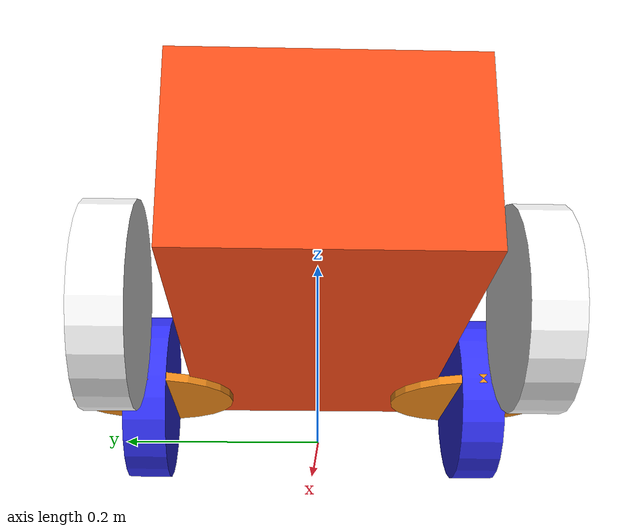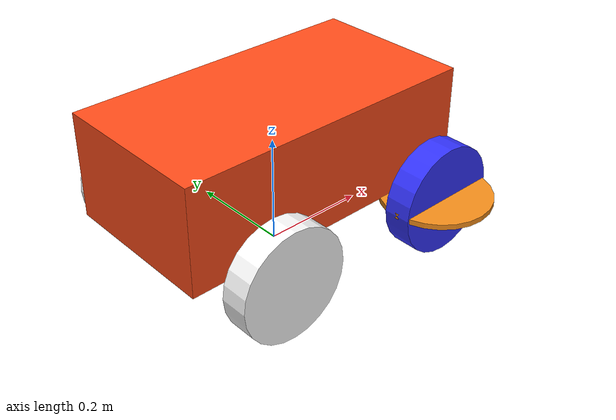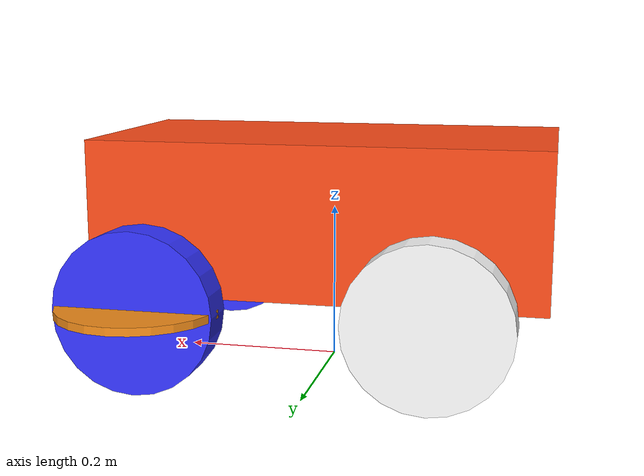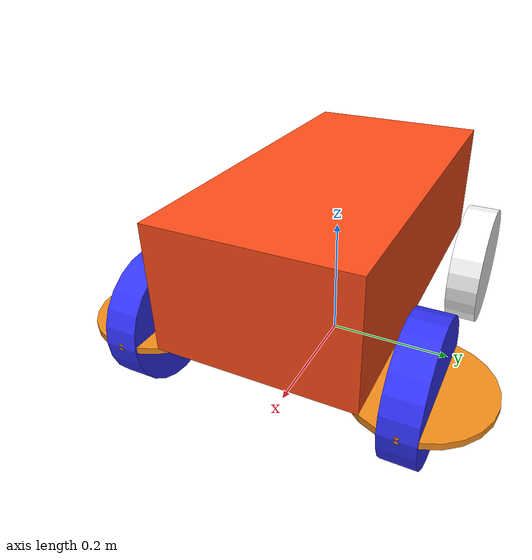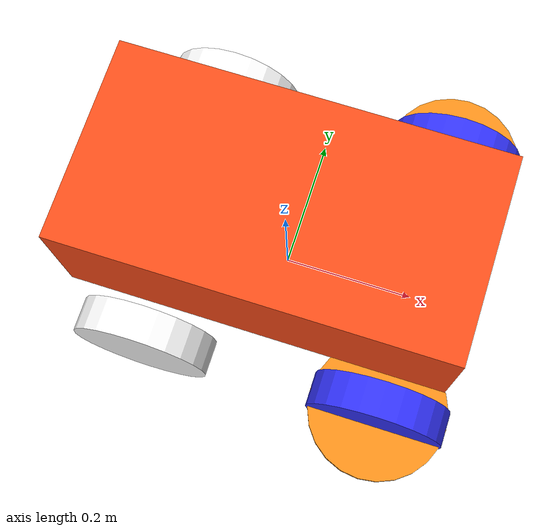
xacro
<?xml version="1.0"?>
<robot name="traxxas" xmlns:xacro="http://www.ros.org/wiki/xacro">
    <xacro:include filename="inertial_macros.xacro" />
    <xacro:include filename="../colors.xacro" />
    <xacro:include filename="gazebo_control.xacro" />
    <!-- Base link -->
    <link name="base_link">
    </link>

    <!-- Chassis START-->
    <joint name="chassis_joint" type="fixed">
        <parent link="base_link" />
        <child link="chassis" />
        <origin xyz="0 0 0.1" />
    </joint>

    <link name="chassis">
        <visual>
            <origin xyz="0 0 0.1" rpy="0 0 0" />
            <geometry>
                <box size="0.568 0.296 0.193" />
            </geometry>
            <material name="orange" />
        </visual>
        <collision>
            <origin xyz="0 0 0.1" rpy="0 0 0" />
            <geometry>
                <box size="0.568 0.296 0.193" />
            </geometry>
        </collision>
        <xacro:inertial_box mass="0.5" x="0.568" y="0.296" z="0.193">
            <origin xyz="0 0 0.1" rpy="0 0 0" />
        </xacro:inertial_box>
    </link>

    <gazebo reference="chassis">
        <material>Gazebo/Orange</material>
    </gazebo>

    <joint name="rear_right_wheel_joint" type="continuous">
        <parent link="chassis" />
        <child link="rear_right_wheel" />
        <origin xyz="-0.15 0.200 0" rpy="-${pi/2} 0 0" />
        <dynamics damping="0.1"/>
        <limit effort="10" velocity="10" />
        <joint_properties damping="0.0" friction="0.0" />
        <axis xyz="0 0 1" />
    </joint>

    <link name="rear_right_wheel">
        <visual>
            <origin xyz="0 0 0" rpy="0 0 0" />
            <geometry>
                <cylinder length="0.05" radius="0.1" />
            </geometry>
            <material name="white" />
        </visual>
        <collision>
            <geometry>
                <cylinder length="0.05" radius="0.1" />
            </geometry>
        </collision>
        <xacro:inertial_cylinder mass="0.1" length="0.05" radius="0.1">
            <origin xyz="0 0 0" rpy="0 0 0" />
        </xacro:inertial_cylinder>
    </link>

    <gazebo reference="rear_right_wheel">
        <material>Gazebo/Blue</material>
    </gazebo>

    <joint name="rear_left_wheel_joint" type="continuous">
        <parent link="chassis" />
        <child link="rear_left_wheel" />
        <origin xyz="-0.15 -0.200 0" rpy="-${pi/2} 0 0" />
        <dynamics damping="0.1"/>
        <limit effort="10" velocity="10" />
        <joint_properties damping="0.0" friction="0.0" />
        <axis xyz="0 0 1" />
    </joint>

    <link name="rear_left_wheel">
        <visual>
            <origin xyz="0 0 0" rpy="0 0 0" />
            <geometry>
                <cylinder length="0.05" radius="0.1" />
            </geometry>
            <material name="white" />
        </visual>
        <collision>
            <geometry>
                <cylinder length="0.1" radius="0.1" />
            </geometry>
        </collision>
        <xacro:inertial_cylinder mass="0.05" length="0.05" radius="0.1">
            <origin xyz="0 0 0" rpy="0 0 0" />
        </xacro:inertial_cylinder>
    </link>

    <gazebo reference="rear_left_wheel">
        <material>Gazebo/Blue</material>
    </gazebo>

    <!-- FRONT RIGHT WHEEL -->
    <link name="front_right_wheel">
        <visual>
            <geometry>
                <cylinder length="0.05" radius="0.1" />
            </geometry>
            <material name="blue" />
        </visual>
        <collision>
            <geometry>
                <cylinder length="0.05" radius="0.1" />
            </geometry>
        </collision>
        <xacro:inertial_cylinder mass="0.1" length="0.05" radius="0.1">
            <origin xyz="0 0 0" rpy="0 0 0" />
        </xacro:inertial_cylinder>
    </link>

    <link name="front_right_steering_link">
        <visual>
            <geometry>
                <cylinder length="0.01" radius="0.1" />
            </geometry>
        </visual>
        <collision>
            <geometry>
                <cylinder length="0.01" radius="0.1" />
            </geometry>
        </collision>
        <xacro:inertial_cylinder mass="0.1" length="0.01" radius="0.1">
            <origin xyz="0 0 0" rpy="0 0 0" />
        </xacro:inertial_cylinder>
    </link>

    <joint name="front_right_wheel_joint" type="continuous">
        <parent link="front_right_steering_link" />
        <child link="front_right_wheel" />
        <origin xyz="0 0 0" rpy="-${pi/2} 0 0" />
        <axis xyz="0 0 1" />
    </joint>

    <joint name="front_right_steering_joint" type="revolute">
        <parent link="chassis" />
        <child link="front_right_steering_link" />
        <origin xyz="0.2 -0.200 0" rpy="0 0 0" />
        <limit lower="-0.6" upper="0.6" effort="10" velocity="0" />
        <axis xyz="0 0 1" />
    </joint>

    <gazebo reference="front_right_wheel">
        <material>Gazebo/Yellow</material>
    </gazebo>

    <gazebo reference="front_right_steering_link">
        <material>Gazebo/OrangeTransparent</material>
    </gazebo>

    <!-- END FRONT RIGHT WHEEL -->

    <!-- FRONT LEFT WHEEL -->
    <link name="front_left_wheel">
        <visual>
            <geometry>
                <cylinder length="0.05" radius="0.1" />
            </geometry>
            <material name="blue" />
        </visual>
        <collision>
            <geometry>
                <cylinder length="0.05" radius="0.1" />
            </geometry>
        </collision>
        <xacro:inertial_cylinder mass="0.1" length="0.05" radius="0.1">
            <origin xyz="0 0 0" rpy="0 0 0" />
        </xacro:inertial_cylinder>
    </link>

    <link name="front_left_steering_link">
        <visual>
            <geometry>
                <cylinder length="0.01" radius="0.1" />
            </geometry>
        </visual>
        <collision>
            <geometry>
                <cylinder length="0.01" radius="0.1" />
            </geometry>
        </collision>
        <xacro:inertial_cylinder mass="0.1" length="0.01" radius="0.1">
            <origin xyz="0 0 0" rpy="0 0 0" />
        </xacro:inertial_cylinder>
    </link>

    <joint name="front_left_wheel_joint" type="continuous">
        <parent link="front_left_steering_link" />
        <child link="front_left_wheel" />
        <origin xyz="0 0 0" rpy="-${pi/2} 0 0" />
        <axis xyz="0 0 1" />
    </joint>

    <joint name="front_left_steering_joint" type="revolute">
        <parent link="chassis" />
        <child link="front_left_steering_link" />
        <origin xyz="0.2 0.2 0" rpy="0 0 0" />
        <limit lower="-0.6" upper="0.6" effort="10" velocity="0" />
        <axis xyz="0 0 1" />
    </joint>

    <gazebo reference="front_left_wheel">
        <material>Gazebo/Yellow</material>
    </gazebo>

    <gazebo reference="front_left_steering_link">
        <material>Gazebo/OrangeTransparent</material>
    </gazebo>

    <!-- END FRONT LEFT WHEEL -->
</robot>

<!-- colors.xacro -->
<robot xmlns:xacro="http://www.ros.org/wiki/xacro">
    <material name="white">
        <color rgba="1 1 1 1" />
    </material>

    <material name="orange">
        <color rgba="1 0.3 0.1 1" />
    </material>

    <material name="blue">
        <color rgba="0.2 0.2 1 1" />
    </material>

    <material name="black">
        <color rgba="0 0 0 1" />
    </material>

    <material name="green">
        <color rgba="0 1 0 1" />
    </material>
</robot>
